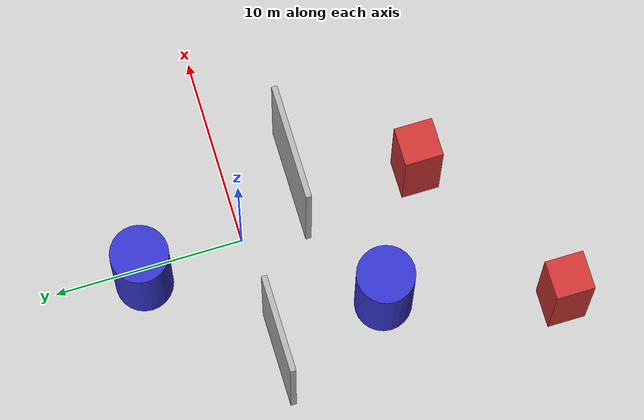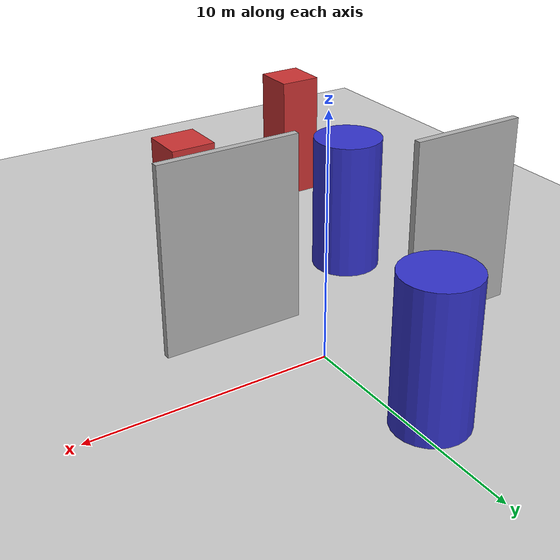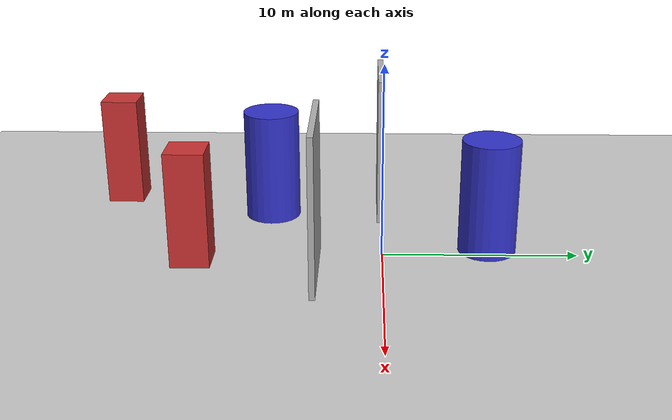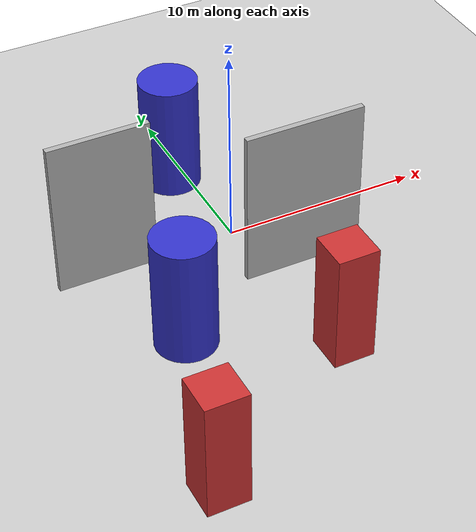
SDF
<sdf version="1.10">
 <world name="obstacle">
  <physics type="ode">
   <max_step_size>0.001</max_step_size>
   <real_time_factor>1</real_time_factor>
   <real_time_update_rate>1000</real_time_update_rate>
  </physics>
  <gravity>0 0 -9.8000000000000007</gravity>
  <magnetic_field>6.0000000000000002e-06 2.3e-05 -4.1999999999999998e-05</magnetic_field>
  <atmosphere type="adiabatic"/>
  <scene>
   <grid>false</grid>
   <ambient>0.400000006 0.400000006 0.400000006 1</ambient>
   <background>0.699999988 0.699999988 0.699999988 1</background>
   <shadows>true</shadows>
  </scene>
  <spherical_coordinates>
   <surface_model>EARTH_WGS84</surface_model>
   <world_frame_orientation>ENU</world_frame_orientation>
   <latitude_deg>47.397971057728974</latitude_deg>
   <longitude_deg>8.5461637398001464</longitude_deg>
   <elevation>0</elevation>
   <heading_deg>0</heading_deg>
  </spherical_coordinates>
  <model name="ground_plane">
   <static>true</static>
   <link name="link">
    <collision name="collision">
     <geometry><plane><normal>0 0 1</normal><size>1 1</size></plane></geometry>
    </collision>
    <visual name="visual">
     <geometry><plane><normal>0 0 1</normal><size>500 500</size></plane></geometry>
     <material>
      <ambient>0.800000012 0.800000012 0.800000012 1</ambient>
      <diffuse>0.800000012 0.800000012 0.800000012 1</diffuse>
      <specular>0.800000012 0.800000012 0.800000012 1</specular>
     </material>
    </visual>
    <inertial>
     <mass>1</mass>
     <inertia><ixx>1</ixx><ixy>0</ixy><ixz>0</ixz><iyy>1</iyy><iyz>0</iyz><izz>1</izz></inertia>
    </inertial>
   </link>
  </model>
  <model name="tall_wall">
   <static>true</static>
   <pose>2.1228699684143066 -3.349323034286499 4 0 0 0</pose>
   <link name="wall_link">
    <collision name="collision"><geometry><box><size>6 0.29999999999999999 8</size></box></geometry></collision>
    <visual name="visual">
     <geometry><box><size>6 0.29999999999999999 8</size></box></geometry>
     <material>
      <ambient>0.699999988 0.699999988 0.699999988 1</ambient>
      <diffuse>0.699999988 0.699999988 0.699999988 1</diffuse>
     </material>
    </visual>
    <inertial>
     <mass>1</mass>
     <inertia><ixx>1</ixx><ixy>0</ixy><ixz>0</ixz><iyy>1</iyy><iyz>0</iyz><izz>1</izz></inertia>
    </inertial>
   </link>
  </model>
  <model name="tall_wall_2">
   <static>true</static>
   <pose>-6.5831098556518555 -0.081674642860889435 4 0 0 0</pose>
   <link name="wall_link">
    <collision name="collision"><geometry><box><size>5 0.29999999999999999 8</size></box></geometry></collision>
    <visual name="visual">
     <geometry><box><size>5 0.29999999999999999 8</size></box></geometry>
     <material>
      <ambient>0.699999988 0.699999988 0.699999988 1</ambient>
      <diffuse>0.699999988 0.699999988 0.699999988 1</diffuse>
     </material>
    </visual>
    <inertial>
     <mass>1</mass>
     <inertia><ixx>1</ixx><ixy>0</ixy><ixz>0</ixz><iyy>1</iyy><iyz>0</iyz><izz>1</izz></inertia>
    </inertial>
   </link>
  </model>
  <model name="cuboid_1">
   <static>true</static>
   <pose>0.83016097545623779 -9.6462259292602539 3 0 0 0</pose>
   <link name="link">
    <collision name="collision"><geometry><box><size>2 2 6</size></box></geometry></collision>
    <visual name="visual">
     <geometry><box><size>2 2 6</size></box></geometry>
     <material>
      <ambient>0.800000012 0.200000003 0.200000003 1</ambient>
      <diffuse>0.800000012 0.200000003 0.200000003 1</diffuse>
     </material>
    </visual>
    <inertial>
     <mass>1</mass>
     <inertia><ixx>1</ixx><ixy>0</ixy><ixz>0</ixz><iyy>1</iyy><iyz>0</iyz><izz>1</izz></inertia>
    </inertial>
   </link>
  </model>
  <model name="cuboid_2">
   <static>true</static>
   <pose>-7.9353775978088379 -14.799099922180176 3 0 0 0</pose>
   <link name="link">
    <collision name="collision"><geometry><box><size>2 2 6</size></box></geometry></collision>
    <visual name="visual">
     <geometry><box><size>2 2 6</size></box></geometry>
     <material>
      <ambient>0.800000012 0.200000003 0.200000003 1</ambient>
      <diffuse>0.800000012 0.200000003 0.200000003 1</diffuse>
     </material>
    </visual>
    <inertial>
     <mass>1</mass>
     <inertia><ixx>1</ixx><ixy>0</ixy><ixz>0</ixz><iyy>1</iyy><iyz>0</iyz><izz>1</izz></inertia>
    </inertial>
   </link>
  </model>
  <model name="cylinder_1">
   <static>true</static>
   <pose>-5.2772397994995117 -6.0411877632141113 3.0395300388336182 0 0 0</pose>
   <link name="link">
    <collision name="collision">
     <geometry><cylinder><radius>1.5</radius><length>6</length></cylinder></geometry>
    </collision>
    <visual name="visual">
     <geometry><cylinder><radius>1.5</radius><length>6</length></cylinder></geometry>
     <material>
      <ambient>0.200000003 0.200000003 0.800000012 1</ambient>
      <diffuse>0.200000003 0.200000003 0.800000012 1</diffuse>
     </material>
    </visual>
    <inertial>
     <mass>1</mass>
     <inertia><ixx>1</ixx><ixy>0</ixy><ixz>0</ixz><iyy>1</iyy><iyz>0</iyz><izz>1</izz></inertia>
    </inertial>
   </link>
  </model>
  <model name="cylinder_2">
   <static>true</static>
   <pose>-0.72229701280593872 5.440546989440918 3 0 0 0</pose>
   <link name="link">
    <collision name="collision">
     <geometry><cylinder><radius>1.5</radius><length>6</length></cylinder></geometry>
    </collision>
    <visual name="visual">
     <geometry><cylinder><radius>1.5</radius><length>6</length></cylinder></geometry>
     <material>
      <ambient>0.200000003 0.200000003 0.800000012 1</ambient>
      <diffuse>0.200000003 0.200000003 0.800000012 1</diffuse>
     </material>
    </visual>
    <inertial>
     <mass>1</mass>
     <inertia><ixx>1</ixx><ixy>0</ixy><ixz>0</ixz><iyy>1</iyy><iyz>0</iyz><izz>1</izz></inertia>
    </inertial>
   </link>
  </model>
  <light name="sunUTC" type="directional">
   <pose>0 0 500 0 0 0</pose>
   <intensity>1</intensity>
   <direction>0.001 0.625 -0.78000000000000003</direction>
   <diffuse>0.903999984 0.903999984 0.903999984 1</diffuse>
   <specular>0.270999998 0.270999998 0.270999998 1</specular>
   <attenuation><range>2000</range><linear>0</linear><constant>1</constant><quadratic>0</quadratic></attenuation>
   <spot><inner_angle>0</inner_angle><outer_angle>0</outer_angle><falloff>0</falloff></spot>
  </light>
 </world>
</sdf>
